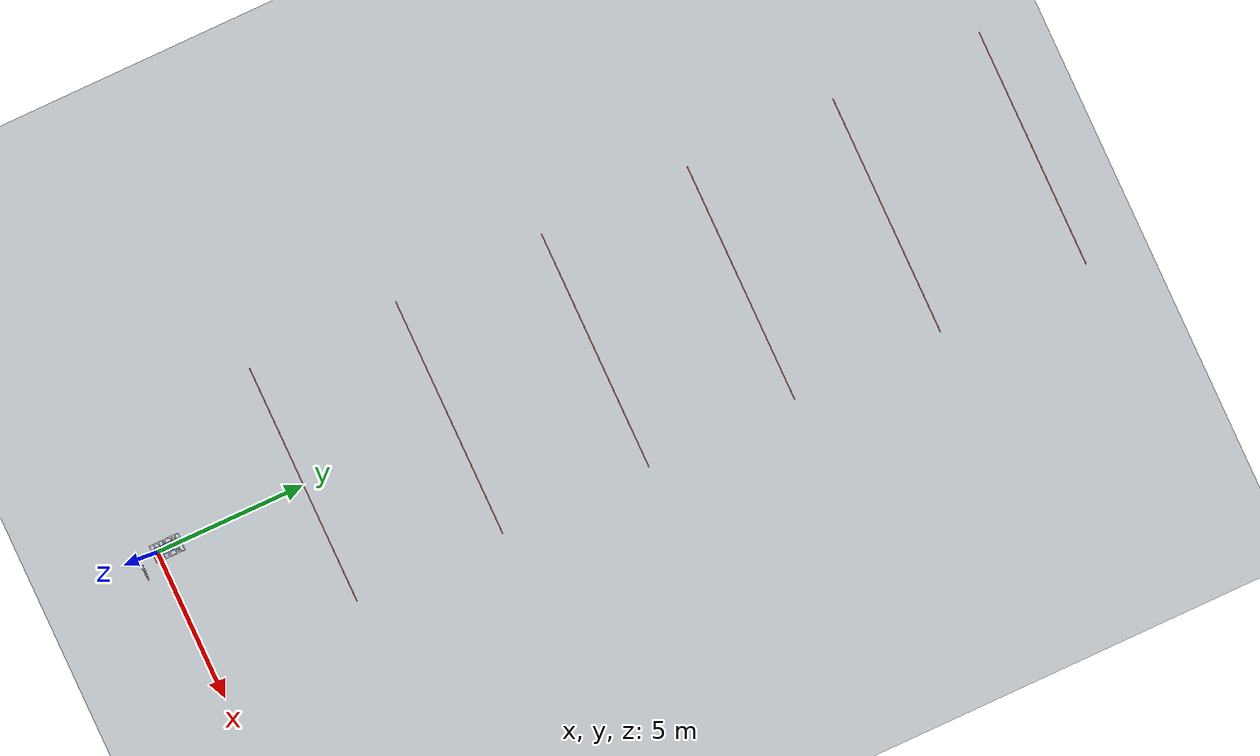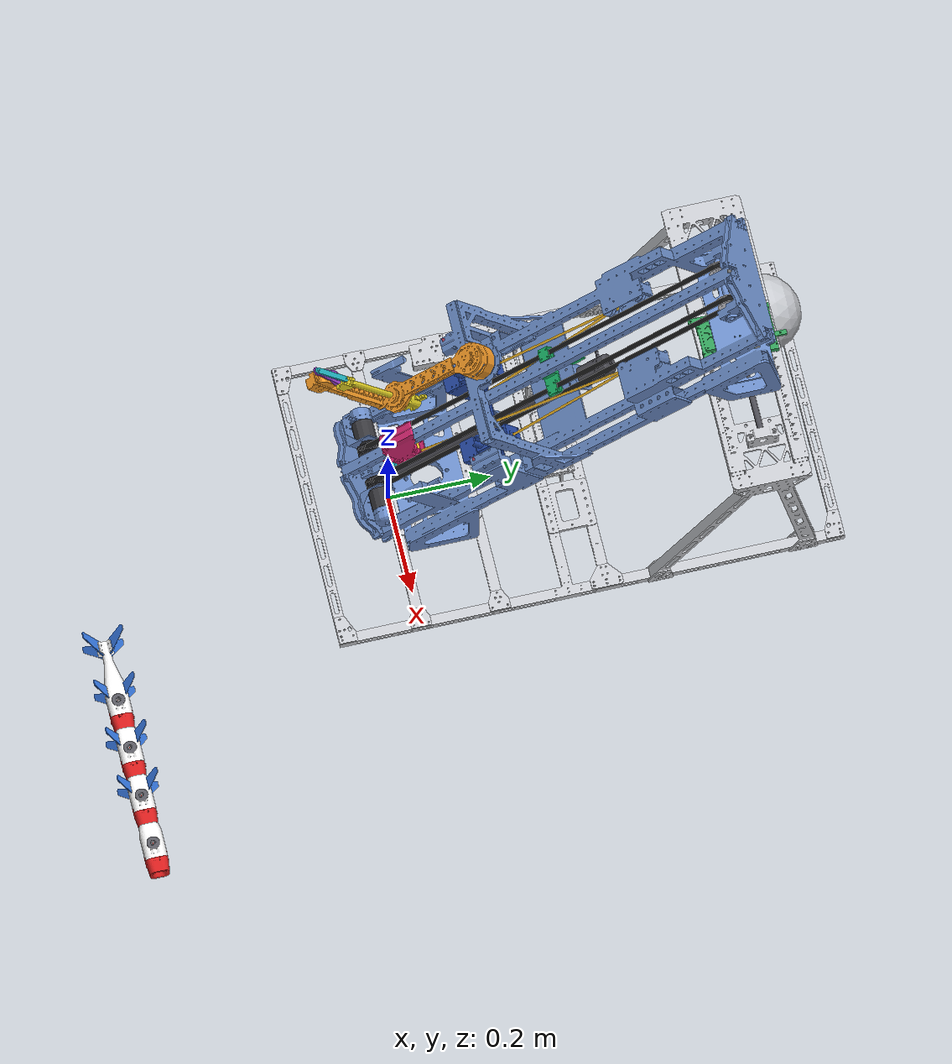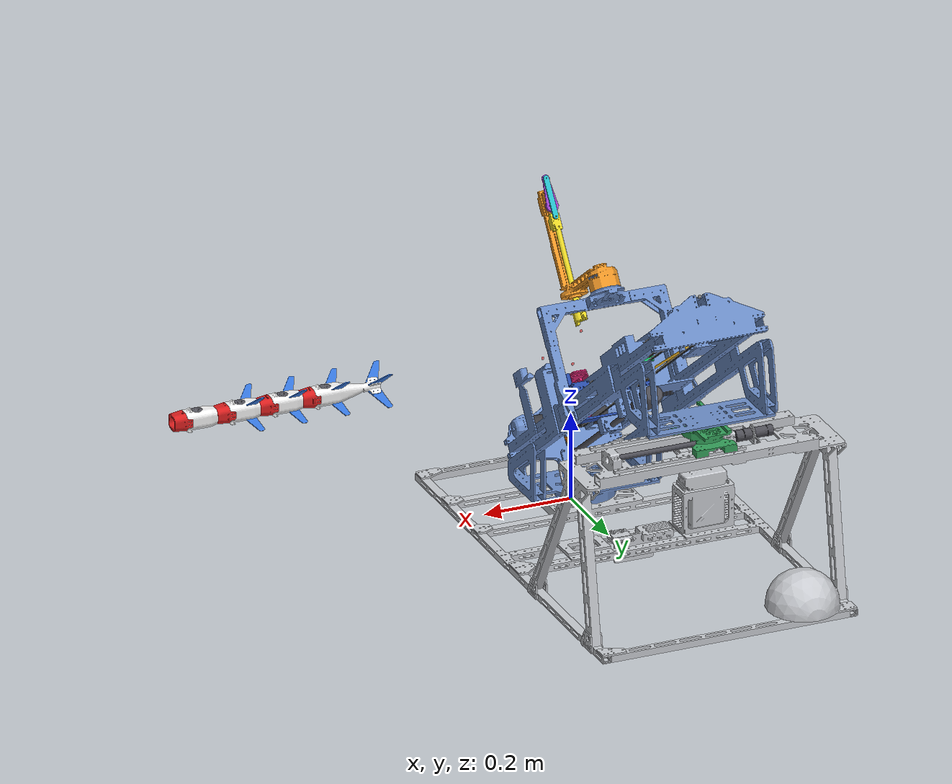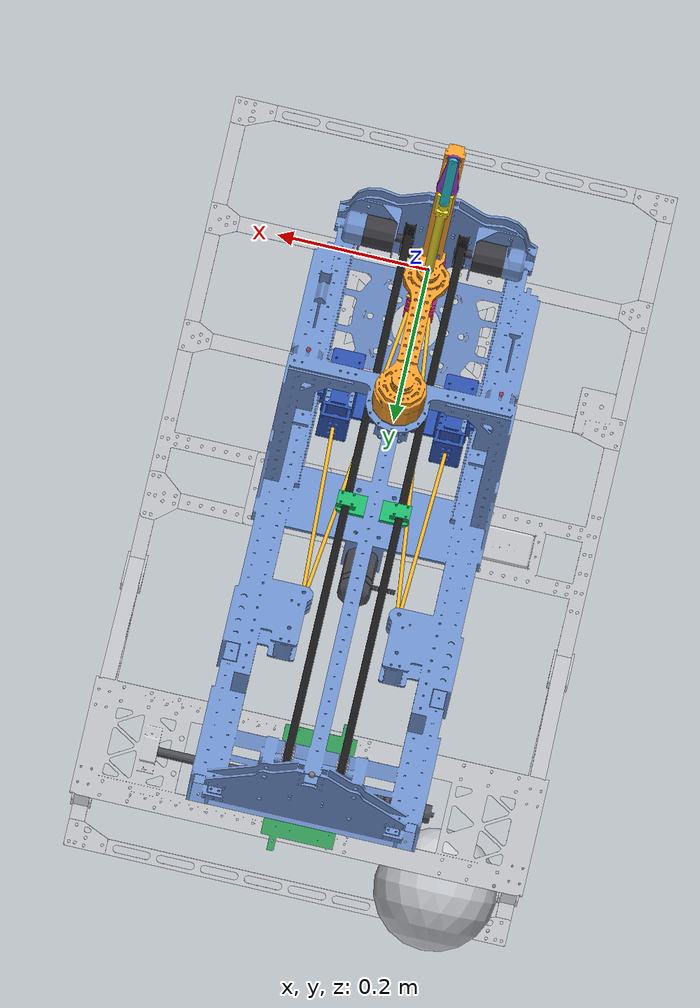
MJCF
<mujoco model="dart_launcher">
  <compiler angle="radian" meshdir="meshes" inertiafromgeom="false" autolimits="true"/>
  <option timestep="0.0005" integrator="implicitfast"/>
  <visual>
    <global offwidth="1600" offheight="1200" azimuth="-125" elevation="-18"/>
    <quality shadowsize="4096"/>
    <headlight ambient="0.42 0.42 0.42" diffuse="0.45 0.45 0.45" specular="0.05 0.05 0.05"/>
    <map znear="0.005" zfar="80"/>
  </visual>
  <default><geom contype="0" conaffinity="0"/><joint solreflimit="0.002 1" solimplimit="0.99 0.999 0.0005"/></default>
  <asset>
    <texture name="grid" type="2d" builtin="checker" width="512" height="512" rgb1="0.80 0.82 0.84" rgb2="0.73 0.75 0.78" mark="edge" markrgb="0.58 0.6 0.63"/>
    <material name="floor" texture="grid" texrepeat="36 40" reflectance="0.03"/>
    <texture name="sky" type="skybox" builtin="gradient" rgb1="0.72 0.82 0.94" rgb2="0.96 0.97 1" width="256" height="256"/>
    <mesh name="base_0" file="base_0.stl" inertia="shell"/>
    <mesh name="base_1" file="base_1.stl" inertia="shell"/>
    <mesh name="yaw_screw" file="yaw_screw.stl" inertia="shell"/>
    <mesh name="yaw_slide" file="yaw_slide.stl" inertia="shell"/>
    <mesh name="frame" file="frame.stl" inertia="shell"/>
    <mesh name="belts" file="belts.stl" inertia="shell"/>
    <mesh name="motor_r" file="motor_r.stl" inertia="shell"/>
    <mesh name="motor_l" file="motor_l.stl" inertia="shell"/>
    <mesh name="idler_r" file="idler_r.stl" inertia="shell"/>
    <mesh name="idler_l" file="idler_l.stl" inertia="shell"/>
    <mesh name="slider" file="slider.stl" inertia="shell"/>
    <mesh name="shuttle" file="shuttle.stl" inertia="shell"/>
    <mesh name="pitch_screw" file="pitch_screw.stl" inertia="shell"/>
    <mesh name="pitch_slider" file="pitch_slider.stl" inertia="shell"/>
    <mesh name="lock" file="lock.stl" inertia="shell"/>
    <mesh name="claw_r" file="claw_r.stl" inertia="shell"/>
    <mesh name="claw_l" file="claw_l.stl" inertia="shell"/>
    <mesh name="arm" file="arm.stl" inertia="shell"/>
    <mesh name="crank" file="crank.stl" inertia="shell"/>
    <mesh name="rod" file="rod.stl" inertia="shell"/>
    <mesh name="plunger" file="plunger.stl" inertia="shell"/>
    <mesh name="dart_body" file="dart_body.stl" inertia="shell"/>
    <mesh name="dart_fins" file="dart_fins.stl" inertia="shell"/>
    <mesh name="dart_nose" file="dart_nose.stl" inertia="shell"/>
    <mesh name="dart_plate" file="dart_plate.stl" inertia="shell"/>
  </asset>
  <worldbody>
    <light name="sun" directional="true" pos="2 -3 6" dir="-0.3 0.5 -1" diffuse="0.55 0.55 0.55" castshadow="false"/>
    <geom name="floor" type="plane" pos="0 14 0" size="16 18 0.1" material="floor" contype="1" conaffinity="2" friction="0.8 0.005 0.0001"/>
    <camera name="overview" pos="1.5 -0.9 1.1" mode="targetbody" target="frame"/>
    <camera name="side" pos="2.2 0.35 0.45" mode="targetbody" target="frame"/>
    <geom type="box" pos="0 5 0.0005" size="4 0.012 0.0005" rgba="0.85 0.3 0.2 0.9"/>
    <geom type="box" pos="0 10 0.0005" size="4 0.012 0.0005" rgba="0.85 0.3 0.2 0.9"/>
    <geom type="box" pos="0 15 0.0005" size="4 0.012 0.0005" rgba="0.85 0.3 0.2 0.9"/>
    <geom type="box" pos="0 20 0.0005" size="4 0.012 0.0005" rgba="0.85 0.3 0.2 0.9"/>
    <geom type="box" pos="0 25 0.0005" size="4 0.012 0.0005" rgba="0.85 0.3 0.2 0.9"/>
    <geom type="box" pos="0 30 0.0005" size="4 0.012 0.0005" rgba="0.85 0.3 0.2 0.9"/>
    <body name="base" pos="0 0 0.3911868">
      <inertial pos="-0.0666113 0.4995687 -0.2344762" mass="2.65484" fullinertia="0.2373097 0.1416582 0.2726196 0.009338142 -0.01404309 -0.04373126"/>
      <geom name="base_0" type="mesh" mesh="base_0" rgba="0.78 0.79 0.81 1" group="1"/>
      <geom name="base_1" type="mesh" mesh="base_1" rgba="0.78 0.79 0.81 1" group="1"/>
      <body name="yaw_screw" pos="-0.0917 0.6795947 0.03081317">
        <inertial pos="0.0795316 3.253498e-05 -4.0853e-05" mass="0.0648386" fullinertia="3.271044e-06 0.0007273966 0.0007278195 9.868065e-08 -2.001353e-07 -4.728626e-08"/>
        <joint name="yaw_screw" type="hinge" axis="1 0 0" armature="0.0007776" damping="0.0002" frictionloss="0.005"/>
        <geom name="yaw_screw" type="mesh" mesh="yaw_screw" rgba="0.3 0.3 0.33 1" group="1"/>
      </body>
      <body name="yaw_slide" pos="0 0.6795947 0.03081317">
        <inertial pos="-0.000823678 0.0001742346 0.02417455" mass="0.307085" fullinertia="0.0004822096 0.0002689834 0.0005641706 -1.035106e-05 -6.130113e-06 -1.069205e-06"/>
        <joint name="yaw_slide" type="slide" axis="1 0 0" range="0 0.16" damping="5" frictionloss="2"/>
        <geom name="yaw_slide" type="mesh" mesh="yaw_slide" rgba="0.2 0.62 0.35 1" group="1"/>
      </body>
      <body name="frame" pos="5.000004e-12 0.07507343 -0.3141868">
        <inertial pos="-0.0006078194 0.2164253 0.290457" mass="5.11214" fullinertia="0.540447 0.2635053 0.3749909 -0.001273622 -0.0009504375 -0.227743"/>
        <joint name="frame" type="hinge" axis="0 0 1" damping="0.5" frictionloss="0.1"/>
        <geom name="frame" type="mesh" mesh="frame" rgba="0.42 0.55 0.78 1" group="1"/>
        <geom name="belts" type="mesh" mesh="belts" rgba="0.08 0.08 0.08 1" group="1"/>
        <geom name="rail_top" type="box" pos="-5.000004e-12 0.2164838 0.3795204" quat="0.9483237 0.3173047 0 0" size="0.01 0.47 0.01000004" group="3" rgba="0.2 0.8 0.2 0.3" contype="1" conaffinity="2" friction="0.2 0.005 0.0001"/>
        <site name="rail_exit" pos="-5.000004e-12 0.5858243 0.6703598" size="0.004"/>
        <site name="band_roller_r" pos="0.062 0.3855435 0.45946" size="0.004" rgba="1 0.8 0.2 1"/>
        <site name="band_roller_l" pos="-0.062 0.3855435 0.45946" size="0.004" rgba="1 0.8 0.2 1"/>
        <site name="holder_r" pos="0.126 0.06283855 0.3338916" quat="0.6705661 0.2243683 -0.2243683 0.6705661" size="0.003" rgba="1 0 0 0.5"/>
        <site name="holder_l" pos="-0.1259724 0.06283855 0.3338916" quat="0.6705661 0.2243683 -0.2243683 0.6705661" size="0.003" rgba="1 0 0 0.5"/>
        <body name="motor_r" pos="0.091 -0.1047818 0.09623416">
          <inertial pos="-0.02785612 2.175779e-05 -1.677516e-06" mass="0.0838216" fullinertia="1.669327e-05 3.744909e-05 3.747063e-05 5.117415e-08 -3.741805e-09 -1.435916e-09"/>
          <joint name="motor_r" type="hinge" axis="-1 -0 -0" armature="0.00368763" damping="0.001" frictionloss="0.02"/>
          <geom name="motor_r" type="mesh" mesh="motor_r" rgba="0.22 0.22 0.24 1" group="1"/>
        </body>
        <body name="motor_l" pos="-0.091 -0.1047818 0.09623416">
          <inertial pos="0.02785612 1.776521e-05 5.192658e-06" mass="0.0838216" fullinertia="1.669328e-05 3.744937e-05 3.747037e-05 -4.206934e-08 -1.204878e-08 -3.306379e-09"/>
          <joint name="motor_l" type="hinge" axis="1 0 0" armature="0.00368763" damping="0.001" frictionloss="0.02"/>
          <geom name="motor_l" type="mesh" mesh="motor_l" rgba="0.22 0.22 0.24 1" group="1"/>
        </body>
        <body name="idler_r" pos="0.03 0.5761688 0.6067377">
          <inertial pos="0.005000004 9.061092e-05 1.89943e-05" mass="0.0172891" fullinertia="3.363926e-06 2.016541e-06 2.035732e-06 -1.095196e-14 7.540673e-15 -3.616746e-09"/>
          <joint name="idler_r" type="hinge" axis="-1 -0 -0" armature="1e-06"/>
          <geom name="idler_r" type="mesh" mesh="idler_r" rgba="0.85 0.85 0.88 1" group="1"/>
        </body>
        <body name="idler_l" pos="-0.035 0.5761688 0.6067377">
          <inertial pos="3.987246e-09 5.01598e-05 -7.781439e-05" mass="0.0172891" fullinertia="3.363925e-06 2.030857e-06 2.021414e-06 -6.481274e-15 1.585408e-14 9.102846e-09"/>
          <joint name="idler_l" type="hinge" axis="1 0 0" armature="1e-06"/>
          <geom name="idler_l" type="mesh" mesh="idler_l" rgba="0.85 0.85 0.88 1" group="1"/>
        </body>
        <body name="slider" pos="0.0002496386 0.5630543 0.6532014">
          <inertial pos="-0.0002477017 -0.3157128 -0.274231" mass="0.0301592" fullinertia="1.851475e-05 2.829357e-05 3.191199e-05 -1.12966e-09 -9.424165e-10 -8.777687e-06"/>
          <joint name="slider" type="slide" axis="-0 0.7986355 0.601815" range="-0.33 0.37" damping="1" frictionloss="2"/>
          <geom name="slider" type="mesh" mesh="slider" rgba="0.1 0.7 0.4 1" group="1"/>
        </body>
        <body name="shuttle" pos="0.0002553351 0.2134414 0.3897491">
          <inertial pos="-0.0002550205 -0.2620028 -0.2220307" mass="0.105169" fullinertia="0.0001768404 0.0001577845 4.641127e-05 2.770199e-10 1.158949e-09 1.351436e-05"/>
          <joint name="shuttle" type="slide" axis="-0 0.7986355 0.601815" range="-0.008 0.5" damping="0.3" frictionloss="1"/>
          <geom name="shuttle" type="mesh" mesh="shuttle" rgba="0.85 0.15 0.45 1" group="1"/>
          <site name="band_hook_r" pos="0.01374466 -0.2300932 -0.2347601" size="0.004" rgba="1 0.8 0.2 1"/>
          <site name="band_hook_l" pos="-0.01425534 -0.2300932 -0.2347601" size="0.004" rgba="1 0.8 0.2 1"/>
          <site name="dart_seat" pos="-0.0002553351 -0.2779701 -0.1457002" quat="0.6705661 0.2243683 -0.2243683 0.6705661" size="0.003" rgba="1 0 0 0.5"/>
        </body>
        <body name="pitch_screw" pos="0 0.336544 0.3355129">
          <inertial pos="-0.0001081203 -0.08357403 -0.0629927" mass="0.190205" fullinertia="0.00433547 0.001587159 0.002775469 1.779162e-06 1.305441e-06 -0.002071335"/>
          <joint name="pitch_screw" type="hinge" axis="0 -0.7986355 -0.601815" armature="0.0007776" damping="0.0002" frictionloss="0.005"/>
          <geom name="pitch_screw" type="mesh" mesh="pitch_screw" rgba="0.3 0.3 0.33 1" group="1"/>
        </body>
        <body name="pitch_slider" pos="0 -0.08625361 0.01691203">
          <inertial pos="-0.0001530843 0.1917834 0.2241066" mass="0.327936" fullinertia="0.0004468065 0.002018831 0.001971468 3.472312e-07 -2.146189e-06 -4.754657e-05"/>
          <joint name="pitch_slider" type="slide" axis="-0 0.7986355 0.601815" range="-0.15 0.1" damping="5" frictionloss="2"/>
          <geom name="pitch_slider" type="mesh" mesh="pitch_slider" rgba="0.16 0.3 0.66 1" group="1"/>
          <site name="band_anchor_r" pos="0.074 0.2297265 0.259491" size="0.004" rgba="1 0.8 0.2 1"/>
          <site name="band_anchor_l" pos="-0.074 0.2297265 0.259491" size="0.004" rgba="1 0.8 0.2 1"/>
        </body>
        <body name="lock" pos="-0.0115 -0.1304016 0.01552246">
          <inertial pos="0.007210014 0.01568211 0.02170567" mass="0.00453849" fullinertia="4.321654e-06 1.905436e-06 2.530264e-06 -2.854817e-07 -2.558132e-07 -1.754707e-06"/>
          <joint name="lock" type="hinge" axis="-1 -0 -0" range="0 0.7853982" armature="0.0001" damping="0.01"/>
          <geom name="lock" type="mesh" mesh="lock" rgba="0.95 0.55 0.1 1" group="1"/>
        </body>
        <body name="claw_r" pos="0.005470164 -0.08067695 0.09486513">
          <inertial pos="0.003243649 0.005269734 0.009605641" mass="0.0034533" fullinertia="2.986215e-07 1.601615e-07 2.296227e-07 -3.794628e-08 -2.859458e-08 -1.211199e-07"/>
          <joint name="claw_r" type="hinge" axis="-0 0.601815 -0.7986355" range="0 0.2617994" armature="1e-06"/>
          <geom name="claw_r" type="mesh" mesh="claw_r" rgba="0.15 0.85 0.9 1" group="1"/>
        </body>
        <body name="claw_l" pos="-0.00625 -0.08912951 0.09976489">
          <inertial pos="-0.002463813 0.01372229 0.00470588" mass="0.0034533" fullinertia="2.986215e-07 1.601615e-07 2.296227e-07 3.794627e-08 2.859457e-08 -1.211199e-07"/>
          <joint name="claw_l" type="hinge" axis="0 -0.601815 0.7986355" range="0 0.2617994" armature="1e-06"/>
          <geom name="claw_l" type="mesh" mesh="claw_l" rgba="0.15 0.85 0.9 1" group="1"/>
        </body>
        <body name="arm" pos="0 0.09180478 0.50657">
          <inertial pos="1.14117e-05 -0.07420602 -0.01327179" mass="0.407465" fullinertia="0.00566887 0.0006784734 0.005148927 2.69352e-06 1.498951e-06 4.215717e-05"/>
          <joint name="arm" type="hinge" axis="0 -0.601815 0.7986355" range="-1.658063 1.658063" armature="0.002" damping="0.05"/>
          <geom name="arm" type="mesh" mesh="arm" rgba="0.95 0.6 0.15 1" group="1"/>
          <body name="crank" pos="-5.556399e-05 -0.2667969 0.06027341">
            <inertial pos="1.375155e-05 -0.0086145 0.01210487" mass="0.0078034" fullinertia="3.291025e-06 2.555608e-06 1.430319e-06 1.535358e-09 -2.224565e-09 1.52152e-06"/>
            <joint name="crank" type="hinge" axis="-0 0.7986355 0.601815" range="-0.1745329 3.316126" armature="0.0001" damping="0.005"/>
            <geom name="crank" type="mesh" mesh="crank" rgba="0.6 0.25 0.8 1" group="1"/>
            <body name="rod" pos="5.556399e-05 -0.03388412 0.04959459">
              <inertial pos="-3.229152e-11 0.02554507 -0.0299471" mass="0.00546745" fullinertia="4.049844e-06 2.599911e-06 1.579049e-06 8.726167e-15 -7.704481e-15 1.949534e-06"/>
              <joint name="rod" type="hinge" axis="0 -0.7986355 -0.601815" armature="1e-06"/>
              <geom name="rod" type="mesh" mesh="rod" rgba="0.15 0.75 0.8 1" group="1"/>
            </body>
          </body>
          <body name="plunger" pos="0 -0.2342988 0.01714707">
            <inertial pos="-3.273162e-05 0.0707224 -0.09647159" mass="0.046779" fullinertia="0.00036599 0.0002282412 0.0001411856 3.59665e-08 -9.745605e-08 0.0001743315"/>
            <joint name="plunger" type="slide" axis="-0 0.601815 -0.7986355" range="-0.005 0.125" damping="0.5" frictionloss="0.3"/>
            <geom name="plunger" type="mesh" mesh="plunger" rgba="0.92 0.85 0.15 1" group="1"/>
            <site name="magnet" pos="-5.000004e-12 0.1206849 -0.1851148" quat="0.6705661 0.2243683 -0.2243683 0.6705661" size="0.003" rgba="1 0 0 0.5"/>
            <site name="magnet_centre" pos="-5.000004e-12 0.1209648 -0.1605258" quat="0.6705661 0.2243683 -0.2243683 0.6705661" size="0.003" rgba="1 1 0 0.6"/>
          </body>
        </body>
      </body>
    </body>
    <body name="dart0" pos="0.300 -0.6 0.05">
      <freejoint name="dart0"/>
      <inertial pos="0 0 0" mass="0.17798" fullinertia="5.63436e-05 0.000504652 0.000504578 2.41329e-08 -1.02473e-06 1.58599e-08"/>
      <geom name="dart0" type="capsule" fromto="-0.10709 0 0 0.05217 0 0" size="0.02085" group="3" rgba="1 1 1 0.3" contype="2" conaffinity="1" friction="0.2 0.005 0.0001"/>
      <geom type="mesh" mesh="dart_body" rgba="0.95 0.95 0.95 1" group="1"/>
      <geom type="mesh" mesh="dart_fins" rgba="0.2 0.45 0.85 1" group="1"/>
      <geom type="mesh" mesh="dart_nose" rgba="0.85 0.12 0.12 1" group="1"/>
      <geom type="mesh" mesh="dart_plate" rgba="0.35 0.35 0.38 1" group="1"/>
    </body>
    <body name="dart1" pos="0.400 -0.6 0.05">
      <freejoint name="dart1"/>
      <inertial pos="0 0 0" mass="0.17798" fullinertia="5.63436e-05 0.000504652 0.000504578 2.41329e-08 -1.02473e-06 1.58599e-08"/>
      <geom name="dart1" type="capsule" fromto="-0.10709 0 0 0.05217 0 0" size="0.02085" group="3" rgba="1 1 1 0.3" contype="2" conaffinity="1" friction="0.2 0.005 0.0001"/>
      <geom type="mesh" mesh="dart_body" rgba="0.95 0.95 0.95 1" group="1"/>
      <geom type="mesh" mesh="dart_fins" rgba="0.2 0.45 0.85 1" group="1"/>
      <geom type="mesh" mesh="dart_nose" rgba="0.85 0.12 0.12 1" group="1"/>
      <geom type="mesh" mesh="dart_plate" rgba="0.35 0.35 0.38 1" group="1"/>
    </body>
    <body name="dart2" pos="0.500 -0.6 0.05">
      <freejoint name="dart2"/>
      <inertial pos="0 0 0" mass="0.17798" fullinertia="5.63436e-05 0.000504652 0.000504578 2.41329e-08 -1.02473e-06 1.58599e-08"/>
      <geom name="dart2" type="capsule" fromto="-0.10709 0 0 0.05217 0 0" size="0.02085" group="3" rgba="1 1 1 0.3" contype="2" conaffinity="1" friction="0.2 0.005 0.0001"/>
      <geom type="mesh" mesh="dart_body" rgba="0.95 0.95 0.95 1" group="1"/>
      <geom type="mesh" mesh="dart_fins" rgba="0.2 0.45 0.85 1" group="1"/>
      <geom type="mesh" mesh="dart_nose" rgba="0.85 0.12 0.12 1" group="1"/>
      <geom type="mesh" mesh="dart_plate" rgba="0.35 0.35 0.38 1" group="1"/>
    </body>
    <body name="dart3" pos="0.600 -0.6 0.05">
      <freejoint name="dart3"/>
      <inertial pos="0 0 0" mass="0.17798" fullinertia="5.63436e-05 0.000504652 0.000504578 2.41329e-08 -1.02473e-06 1.58599e-08"/>
      <geom name="dart3" type="capsule" fromto="-0.10709 0 0 0.05217 0 0" size="0.02085" group="3" rgba="1 1 1 0.3" contype="2" conaffinity="1" friction="0.2 0.005 0.0001"/>
      <geom type="mesh" mesh="dart_body" rgba="0.95 0.95 0.95 1" group="1"/>
      <geom type="mesh" mesh="dart_fins" rgba="0.2 0.45 0.85 1" group="1"/>
      <geom type="mesh" mesh="dart_nose" rgba="0.85 0.12 0.12 1" group="1"/>
      <geom type="mesh" mesh="dart_plate" rgba="0.35 0.35 0.38 1" group="1"/>
    </body>
  </worldbody>
  <equality>
    <tendon name="c_yaw_screw" tendon1="t_yaw_screw" solref="0.001 1" solimp="0.95 0.99 0.001"/>
    <tendon name="c_pitch_screw" tendon1="t_pitch_screw" solref="0.001 1" solimp="0.95 0.99 0.001"/>
    <tendon name="c_belt_r" tendon1="t_belt_r" solref="0.001 1" solimp="0.95 0.99 0.001"/>
    <tendon name="c_belt_l" tendon1="t_belt_l" solref="0.001 1" solimp="0.95 0.99 0.001"/>
    <joint name="c_yaw_pin" joint1="frame" joint2="yaw_slide" polycoef="-1.62919584e-07 -1.654131788 -0.003507384192 -0.69439277 -0.4098385972" solref="0.001 1" solimp="0.9999 0.9999 0.001"/>
    <joint name="c_idler_r" joint1="idler_r" joint2="slider" polycoef="0 52.35602094 0 0 0" solref="0.001 1" solimp="0.9999 0.9999 0.001"/>
    <joint name="c_idler_l" joint1="idler_l" joint2="slider" polycoef="0 -52.35602094 0 0 0" solref="0.001 1" solimp="0.9999 0.9999 0.001"/>
    <joint name="c_claw_r" joint1="claw_r" joint2="lock" polycoef="0 0.3333333333 0 0 0" solref="0.001 1" solimp="0.9999 0.9999 0.001"/>
    <joint name="c_claw_l" joint1="claw_l" joint2="lock" polycoef="0 0.3333333333 0 0 0" solref="0.001 1" solimp="0.9999 0.9999 0.001"/>
    <connect name="c_rod" body1="rod" body2="plunger" anchor="0 0.06638214 -0.09272093" solref="0.001 1" solimp="0.9999 0.9999 0.001"/>
    <weld name="dart0_shuttle" body1="shuttle" body2="dart0" active="false" solref="0.002 1" solimp="0.95 0.99 0.001"/>
    <weld name="dart0_plunger" body1="plunger" body2="dart0" active="false" solref="0.002 1" solimp="0.95 0.99 0.001"/>
    <weld name="dart0_frame" body1="frame" body2="dart0" active="false" solref="0.002 1" solimp="0.95 0.99 0.001"/>
    <weld name="dart1_shuttle" body1="shuttle" body2="dart1" active="false" solref="0.002 1" solimp="0.95 0.99 0.001"/>
    <weld name="dart1_plunger" body1="plunger" body2="dart1" active="false" solref="0.002 1" solimp="0.95 0.99 0.001"/>
    <weld name="dart1_frame" body1="frame" body2="dart1" active="false" solref="0.002 1" solimp="0.95 0.99 0.001"/>
    <weld name="dart2_shuttle" body1="shuttle" body2="dart2" active="false" solref="0.002 1" solimp="0.95 0.99 0.001"/>
    <weld name="dart2_plunger" body1="plunger" body2="dart2" active="false" solref="0.002 1" solimp="0.95 0.99 0.001"/>
    <weld name="dart2_frame" body1="frame" body2="dart2" active="false" solref="0.002 1" solimp="0.95 0.99 0.001"/>
    <weld name="dart3_shuttle" body1="shuttle" body2="dart3" active="false" solref="0.002 1" solimp="0.95 0.99 0.001"/>
    <weld name="dart3_plunger" body1="plunger" body2="dart3" active="false" solref="0.002 1" solimp="0.95 0.99 0.001"/>
    <weld name="dart3_frame" body1="frame" body2="dart3" active="false" solref="0.002 1" solimp="0.95 0.99 0.001"/>
  </equality>
  <tendon>
    <fixed name="t_yaw_screw">
      <joint joint="yaw_slide" coef="1"/>
      <joint joint="yaw_screw" coef="0.0006366197724"/>
    </fixed>
    <fixed name="t_pitch_screw">
      <joint joint="pitch_slider" coef="1"/>
      <joint joint="pitch_screw" coef="-0.0006366197724"/>
    </fixed>
    <fixed name="t_belt_r">
      <joint joint="slider" coef="1"/>
      <joint joint="motor_r" coef="-0.0191"/>
    </fixed>
    <fixed name="t_belt_l">
      <joint joint="slider" coef="1"/>
      <joint joint="motor_l" coef="0.0191"/>
    </fixed>
    <spatial name="band" stiffness="90.0" damping="0.2" springlength="0 0.8" width="0.0025" rgba="0.95 0.72 0.15 1">
      <site site="band_anchor_l"/>
      <site site="band_roller_l"/>
      <site site="band_hook_l"/>
      <site site="band_hook_r"/>
      <site site="band_roller_r"/>
      <site site="band_anchor_r"/>
    </spatial>
    <fixed name="push" range="-0.317054 10" solreflimit="0.002 1" solimplimit="0.99 0.999 0.0005">
      <joint joint="slider" coef="1"/>
      <joint joint="shuttle" coef="-1"/>
    </fixed>
  </tendon>
  <actuator>
    <motor name="motor_r" joint="motor_r" ctrlrange="-6 6"/>
    <motor name="motor_l" joint="motor_l" ctrlrange="-6 6"/>
    <motor name="yaw" joint="yaw_screw" ctrlrange="-1.8 1.8"/>
    <motor name="pitch" joint="pitch_screw" ctrlrange="-1.8 1.8"/>
    <position name="lock" joint="lock" kp="2" kv="0.03" ctrlrange="0 0.78540" forcerange="-0.6 0.6"/>
    <position name="arm" joint="arm" kp="40" kv="2" ctrlrange="-1.65806 1.65806" forcerange="-5 5"/>
    <position name="crank" joint="crank" kp="6" kv="0.12" ctrlrange="0 3.14159" forcerange="-1.2 1.2"/>
  </actuator>
</mujoco>
